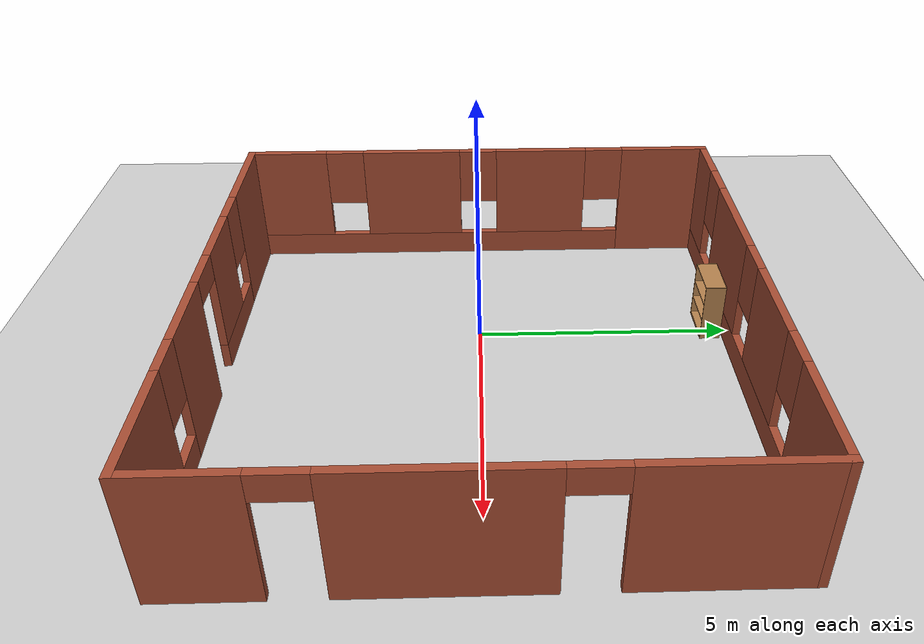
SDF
<sdf version="1.7">
 <world name="default">
  <light name="sun" type="directional">
   <pose>0 0 10 0 -0 0</pose>
   <diffuse>0.8 0.8 0.8 1</diffuse>
   <specular>0.2 0.2 0.2 1</specular>
   <attenuation>
    <range>1000</range>
    <constant>0.9</constant>
    <linear>0.01</linear>
    <quadratic>0.001</quadratic>
   </attenuation>
   <direction>-0.5 0.1 -0.9</direction>
   <spot><inner_angle>0</inner_angle><outer_angle>0</outer_angle><falloff>0</falloff></spot>
  </light>
  <model name="ground_plane">
   <static>1</static>
   <link name="link">
    <collision name="collision">
     <geometry><plane><normal>0 0 1</normal><size>100 100</size></plane></geometry>
     <surface>
      <contact><collide_bitmask>65535</collide_bitmask></contact>
      <friction><ode><mu>100</mu><mu2>50</mu2></ode></friction>
     </surface>
    </collision>
    <visual name="visual">
     <cast_shadows>0</cast_shadows>
     <geometry><plane><normal>0 0 1</normal><size>100 100</size></plane></geometry>
     <material>
      <script><uri>file://media/materials/scripts/gazebo.material</uri><name>Gazebo/Grey</name></script>
     </material>
    </visual>
   </link>
  </model>
  <gravity>0 0 -9.8</gravity>
  <magnetic_field>6e-06 2.3e-05 -4.2e-05</magnetic_field>
  <atmosphere type="adiabatic"/>
  <physics type="ode">
   <max_step_size>0.001</max_step_size>
   <real_time_factor>1</real_time_factor>
   <real_time_update_rate>1000</real_time_update_rate>
  </physics>
  <scene><ambient>0.4 0.4 0.4 1</ambient><background>0.7 0.7 0.7 1</background><shadows>1</shadows></scene>
  <audio><device>default</device></audio>
  <spherical_coordinates>
   <surface_model>EARTH_WGS84</surface_model>
   <latitude_deg>0</latitude_deg>
   <longitude_deg>0</longitude_deg>
   <elevation>0</elevation>
   <heading_deg>0</heading_deg>
  </spherical_coordinates>
  <model name="my_room">
   <pose>1.51198 0.035465 0 0 -0 0</pose>
   <link name="Wall_12">
    <pose>-4.925 0 0 0 -0 -1.5708</pose>
    <visual name="Wall_12_Visual_0">
     <pose>-4.06801 0 1.25 0 -0 0</pose>
     <geometry><box><size>1.86398 0.15 2.5</size></box></geometry>
     <material>
      <script><uri>file://media/materials/scripts/gazebo.material</uri><name>Gazebo/Bricks</name></script>
      <ambient>1 1 1 1</ambient>
     </material>
     <meta><layer>0</layer></meta>
    </visual>
    <collision name="Wall_12_Collision_0">
     <geometry><box><size>1.86398 0.15 2.5</size></box></geometry>
     <pose>-4.06801 0 1.25 0 -0 0</pose>
    </collision>
    <visual name="Wall_12_Visual_1">
     <pose>0.931989 0 0.25 0 -0 0</pose>
     <geometry><box><size>8.13602 0.15 0.5</size></box></geometry>
     <material>
      <script><uri>file://media/materials/scripts/gazebo.material</uri><name>Gazebo/Bricks</name></script>
      <ambient>1 1 1 1</ambient>
     </material>
     <meta><layer>0</layer></meta>
    </visual>
    <collision name="Wall_12_Collision_1">
     <geometry><box><size>8.13602 0.15 0.5</size></box></geometry>
     <pose>0.931989 0 0.25 0 -0 0</pose>
    </collision>
    <visual name="Wall_12_Visual_2">
     <pose>-1.35936 0 1.5 0 -0 0</pose>
     <geometry><box><size>1.95332 0.15 2</size></box></geometry>
     <material>
      <script><uri>file://media/materials/scripts/gazebo.material</uri><name>Gazebo/Bricks</name></script>
      <ambient>1 1 1 1</ambient>
     </material>
     <meta><layer>0</layer></meta>
    </visual>
    <collision name="Wall_12_Collision_2">
     <geometry><box><size>1.95332 0.15 2</size></box></geometry>
     <pose>-1.35936 0 1.5 0 -0 0</pose>
    </collision>
    <visual name="Wall_12_Visual_3">
     <pose>1.46548 0 1.5 0 -0 0</pose>
     <geometry><box><size>2.09635 0.15 2</size></box></geometry>
     <material>
      <script><uri>file://media/materials/scripts/gazebo.material</uri><name>Gazebo/Bricks</name></script>
      <ambient>1 1 1 1</ambient>
     </material>
     <meta><layer>0</layer></meta>
    </visual>
    <collision name="Wall_12_Collision_3">
     <geometry><box><size>2.09635 0.15 2</size></box></geometry>
     <pose>1.46548 0 1.5 0 -0 0</pose>
    </collision>
    <visual name="Wall_12_Visual_4">
     <pose>4.15683 0 1.5 0 -0 0</pose>
     <geometry><box><size>1.68634 0.15 2</size></box></geometry>
     <material>
      <script><uri>file://media/materials/scripts/gazebo.material</uri><name>Gazebo/Bricks</name></script>
      <ambient>1 1 1 1</ambient>
     </material>
     <meta><layer>0</layer></meta>
    </visual>
    <collision name="Wall_12_Collision_4">
     <geometry><box><size>1.68634 0.15 2</size></box></geometry>
     <pose>4.15683 0 1.5 0 -0 0</pose>
    </collision>
    <visual name="Wall_12_Visual_5">
     <pose>-2.73602 0 1.9 0 -0 0</pose>
     <geometry><box><size>0.8 0.15 1.2</size></box></geometry>
     <material>
      <script><uri>file://media/materials/scripts/gazebo.material</uri><name>Gazebo/Bricks</name></script>
      <ambient>1 1 1 1</ambient>
     </material>
     <meta><layer>0</layer></meta>
    </visual>
    <collision name="Wall_12_Collision_5">
     <geometry><box><size>0.8 0.15 1.2</size></box></geometry>
     <pose>-2.73602 0 1.9 0 -0 0</pose>
    </collision>
    <visual name="Wall_12_Visual_6">
     <pose>0.017303 0 1.9 0 -0 0</pose>
     <geometry><box><size>0.8 0.15 1.2</size></box></geometry>
     <material>
      <script><uri>file://media/materials/scripts/gazebo.material</uri><name>Gazebo/Bricks</name></script>
      <ambient>1 1 1 1</ambient>
     </material>
     <meta><layer>0</layer></meta>
    </visual>
    <collision name="Wall_12_Collision_6">
     <geometry><box><size>0.8 0.15 1.2</size></box></geometry>
     <pose>0.017303 0 1.9 0 -0 0</pose>
    </collision>
    <visual name="Wall_12_Visual_7">
     <pose>2.91366 0 1.9 0 -0 0</pose>
     <geometry><box><size>0.8 0.15 1.2</size></box></geometry>
     <material>
      <script><uri>file://media/materials/scripts/gazebo.material</uri><name>Gazebo/Bricks</name></script>
      <ambient>1 1 1 1</ambient>
     </material>
     <meta><layer>0</layer></meta>
    </visual>
    <collision name="Wall_12_Collision_7">
     <geometry><box><size>0.8 0.15 1.2</size></box></geometry>
     <pose>2.91366 0 1.9 0 -0 0</pose>
    </collision>
   </link>
   <link name="Wall_13">
    <pose>0 -4.925 0 0 -0 0</pose>
    <visual name="Wall_13_Visual_0">
     <pose>-3.9301 0 1.25 0 -0 0</pose>
     <geometry><box><size>2.1398 0.15 2.5</size></box></geometry>
     <material>
      <script><uri>file://media/materials/scripts/gazebo.material</uri><name>Gazebo/Bricks</name></script>
      <ambient>1 1 1 1</ambient>
     </material>
     <meta><layer>0</layer></meta>
    </visual>
    <collision name="Wall_13_Collision_0">
     <geometry><box><size>2.1398 0.15 2.5</size></box></geometry>
     <pose>-3.9301 0 1.25 0 -0 0</pose>
    </collision>
    <visual name="Wall_13_Visual_1">
     <pose>1.10479 0 1.25 0 -0 0</pose>
     <geometry><box><size>1.65302 0.15 2.5</size></box></geometry>
     <material>
      <script><uri>file://media/materials/scripts/gazebo.material</uri><name>Gazebo/Bricks</name></script>
      <ambient>1 1 1 1</ambient>
     </material>
     <meta><layer>0</layer></meta>
    </visual>
    <collision name="Wall_13_Collision_1">
     <geometry><box><size>1.65302 0.15 2.5</size></box></geometry>
     <pose>1.10479 0 1.25 0 -0 0</pose>
    </collision>
    <visual name="Wall_13_Visual_2">
     <pose>-1.74096 0 0.25 0 -0 0</pose>
     <geometry><box><size>2.23848 0.15 0.5</size></box></geometry>
     <material>
      <script><uri>file://media/materials/scripts/gazebo.material</uri><name>Gazebo/Bricks</name></script>
      <ambient>1 1 1 1</ambient>
     </material>
     <meta><layer>0</layer></meta>
    </visual>
    <collision name="Wall_13_Collision_2">
     <geometry><box><size>2.23848 0.15 0.5</size></box></geometry>
     <pose>-1.74096 0 0.25 0 -0 0</pose>
    </collision>
    <visual name="Wall_13_Visual_3">
     <pose>3.46565 0 0.25 0 -0 0</pose>
     <geometry><box><size>3.0687 0.15 0.5</size></box></geometry>
     <material>
      <script><uri>file://media/materials/scripts/gazebo.material</uri><name>Gazebo/Bricks</name></script>
      <ambient>1 1 1 1</ambient>
     </material>
     <meta><layer>0</layer></meta>
    </visual>
    <collision name="Wall_13_Collision_3">
     <geometry><box><size>3.0687 0.15 0.5</size></box></geometry>
     <pose>3.46565 0 0.25 0 -0 0</pose>
    </collision>
    <visual name="Wall_13_Visual_4">
     <pose>-1.34096 0 1.5 0 -0 0</pose>
     <geometry><box><size>1.43848 0.15 2</size></box></geometry>
     <material>
      <script><uri>file://media/materials/scripts/gazebo.material</uri><name>Gazebo/Bricks</name></script>
      <ambient>1 1 1 1</ambient>
     </material>
     <meta><layer>0</layer></meta>
    </visual>
    <collision name="Wall_13_Collision_4">
     <geometry><box><size>1.43848 0.15 2</size></box></geometry>
     <pose>-1.34096 0 1.5 0 -0 0</pose>
    </collision>
    <visual name="Wall_13_Visual_5">
     <pose>-1.34096 0 1.5 0 -0 0</pose>
     <geometry><box><size>1.43848 0.15 2</size></box></geometry>
     <material>
      <script><uri>file://media/materials/scripts/gazebo.material</uri><name>Gazebo/Bricks</name></script>
      <ambient>1 1 1 1</ambient>
     </material>
     <meta><layer>0</layer></meta>
    </visual>
    <collision name="Wall_13_Collision_5">
     <geometry><box><size>1.43848 0.15 2</size></box></geometry>
     <pose>-1.34096 0 1.5 0 -0 0</pose>
    </collision>
    <visual name="Wall_13_Visual_6">
     <pose>3.86565 0 1.5 0 -0 0</pose>
     <geometry><box><size>2.2687 0.15 2</size></box></geometry>
     <material>
      <script><uri>file://media/materials/scripts/gazebo.material</uri><name>Gazebo/Bricks</name></script>
      <ambient>1 1 1 1</ambient>
     </material>
     <meta><layer>0</layer></meta>
    </visual>
    <collision name="Wall_13_Collision_6">
     <geometry><box><size>2.2687 0.15 2</size></box></geometry>
     <pose>3.86565 0 1.5 0 -0 0</pose>
    </collision>
    <visual name="Wall_13_Visual_7">
     <pose>-2.4602 0 1.9 0 -0 0</pose>
     <geometry><box><size>0.8 0.15 1.2</size></box></geometry>
     <material>
      <script><uri>file://media/materials/scripts/gazebo.material</uri><name>Gazebo/Bricks</name></script>
      <ambient>1 1 1 1</ambient>
     </material>
     <meta><layer>0</layer></meta>
    </visual>
    <collision name="Wall_13_Collision_7">
     <geometry><box><size>0.8 0.15 1.2</size></box></geometry>
     <pose>-2.4602 0 1.9 0 -0 0</pose>
    </collision>
    <visual name="Wall_13_Visual_8">
     <pose>2.3313 0 1.9 0 -0 0</pose>
     <geometry><box><size>0.8 0.15 1.2</size></box></geometry>
     <material>
      <script><uri>file://media/materials/scripts/gazebo.material</uri><name>Gazebo/Bricks</name></script>
      <ambient>1 1 1 1</ambient>
     </material>
     <meta><layer>0</layer></meta>
    </visual>
    <collision name="Wall_13_Collision_8">
     <geometry><box><size>0.8 0.15 1.2</size></box></geometry>
     <pose>2.3313 0 1.9 0 -0 0</pose>
    </collision>
    <visual name="Wall_13_Visual_9">
     <pose>-0.171721 0 2.25 0 -0 0</pose>
     <geometry><box><size>0.9 0.15 0.5</size></box></geometry>
     <material>
      <script><uri>file://media/materials/scripts/gazebo.material</uri><name>Gazebo/Bricks</name></script>
      <ambient>1 1 1 1</ambient>
     </material>
     <meta><layer>0</layer></meta>
    </visual>
    <collision name="Wall_13_Collision_9">
     <geometry><box><size>0.9 0.15 0.5</size></box></geometry>
     <pose>-0.171721 0 2.25 0 -0 0</pose>
    </collision>
    <visual name="Wall_13_Visual_10">
     <pose>-0.171721 0 2.25 0 -0 0</pose>
     <geometry><box><size>0.9 0.15 0.5</size></box></geometry>
     <material>
      <script><uri>file://media/materials/scripts/gazebo.material</uri><name>Gazebo/Bricks</name></script>
      <ambient>1 1 1 1</ambient>
     </material>
     <meta><layer>0</layer></meta>
    </visual>
    <collision name="Wall_13_Collision_10">
     <geometry><box><size>0.9 0.15 0.5</size></box></geometry>
     <pose>-0.171721 0 2.25 0 -0 0</pose>
    </collision>
   </link>
   <link name="Wall_14">
    <pose>4.925 0 0 0 -0 1.5708</pose>
    <visual name="Wall_14_Visual_0">
     <pose>-4.09244 0 1.25 0 -0 0</pose>
     <geometry><box><size>1.81513 0.15 2.5</size></box></geometry>
     <material>
      <script><uri>file://media/materials/scripts/gazebo.material</uri><name>Gazebo/Bricks</name></script>
      <ambient>1 1 1 1</ambient>
     </material>
     <meta><layer>0</layer></meta>
    </visual>
    <collision name="Wall_14_Collision_0">
     <geometry><box><size>1.81513 0.15 2.5</size></box></geometry>
     <pose>-4.09244 0 1.25 0 -0 0</pose>
    </collision>
    <visual name="Wall_14_Visual_1">
     <pose>-0.607301 0 1.25 0 -0 0</pose>
     <geometry><box><size>3.35514 0.15 2.5</size></box></geometry>
     <material>
      <script><uri>file://media/materials/scripts/gazebo.material</uri><name>Gazebo/Bricks</name></script>
      <ambient>1 1 1 1</ambient>
     </material>
     <meta><layer>0</layer></meta>
    </visual>
    <collision name="Wall_14_Collision_1">
     <geometry><box><size>3.35514 0.15 2.5</size></box></geometry>
     <pose>-0.607301 0 1.25 0 -0 0</pose>
    </collision>
    <visual name="Wall_14_Visual_2">
     <pose>3.48513 0 1.25 0 -0 0</pose>
     <geometry><box><size>3.02973 0.15 2.5</size></box></geometry>
     <material>
      <script><uri>file://media/materials/scripts/gazebo.material</uri><name>Gazebo/Bricks</name></script>
      <ambient>1 1 1 1</ambient>
     </material>
     <meta><layer>0</layer></meta>
    </visual>
    <collision name="Wall_14_Collision_2">
     <geometry><box><size>3.02973 0.15 2.5</size></box></geometry>
     <pose>3.48513 0 1.25 0 -0 0</pose>
    </collision>
    <visual name="Wall_14_Visual_3">
     <pose>-2.73487 0 2.25 0 -0 0</pose>
     <geometry><box><size>0.9 0.15 0.5</size></box></geometry>
     <material>
      <script><uri>file://media/materials/scripts/gazebo.material</uri><name>Gazebo/Bricks</name></script>
      <ambient>1 1 1 1</ambient>
     </material>
     <meta><layer>0</layer></meta>
    </visual>
    <collision name="Wall_14_Collision_3">
     <geometry><box><size>0.9 0.15 0.5</size></box></geometry>
     <pose>-2.73487 0 2.25 0 -0 0</pose>
    </collision>
    <visual name="Wall_14_Visual_4">
     <pose>1.52027 0 2.25 0 -0 0</pose>
     <geometry><box><size>0.9 0.15 0.5</size></box></geometry>
     <material>
      <script><uri>file://media/materials/scripts/gazebo.material</uri><name>Gazebo/Bricks</name></script>
      <ambient>1 1 1 1</ambient>
     </material>
     <meta><layer>0</layer></meta>
    </visual>
    <collision name="Wall_14_Collision_4">
     <geometry><box><size>0.9 0.15 0.5</size></box></geometry>
     <pose>1.52027 0 2.25 0 -0 0</pose>
    </collision>
   </link>
   <link name="Wall_6">
    <pose>0 4.925 0 0 -0 3.14159</pose>
    <visual name="Wall_6_Visual_0">
     <pose>-3.90141 0 1.25 0 -0 0</pose>
     <geometry><box><size>2.19718 0.15 2.5</size></box></geometry>
     <material>
      <script><uri>file://media/materials/scripts/gazebo.material</uri><name>Gazebo/Bricks</name></script>
      <ambient>1 1 1 1</ambient>
     </material>
     <meta><layer>0</layer></meta>
    </visual>
    <collision name="Wall_6_Collision_0">
     <geometry><box><size>2.19718 0.15 2.5</size></box></geometry>
     <pose>-3.90141 0 1.25 0 -0 0</pose>
    </collision>
    <visual name="Wall_6_Visual_1">
     <pose>1.09859 0 0.25 0 -0 0</pose>
     <geometry><box><size>7.80282 0.15 0.5</size></box></geometry>
     <material>
      <script><uri>file://media/materials/scripts/gazebo.material</uri><name>Gazebo/Bricks</name></script>
      <ambient>1 1 1 1</ambient>
     </material>
     <meta><layer>0</layer></meta>
    </visual>
    <collision name="Wall_6_Collision_1">
     <geometry><box><size>7.80282 0.15 0.5</size></box></geometry>
     <pose>1.09859 0 0.25 0 -0 0</pose>
    </collision>
    <visual name="Wall_6_Visual_2">
     <pose>-1.06191 0 1.5 0 -0 0</pose>
     <geometry><box><size>1.88181 0.15 2</size></box></geometry>
     <material>
      <script><uri>file://media/materials/scripts/gazebo.material</uri><name>Gazebo/Bricks</name></script>
      <ambient>1 1 1 1</ambient>
     </material>
     <meta><layer>0</layer></meta>
    </visual>
    <collision name="Wall_6_Collision_2">
     <geometry><box><size>1.88181 0.15 2</size></box></geometry>
     <pose>-1.06191 0 1.5 0 -0 0</pose>
    </collision>
    <visual name="Wall_6_Visual_3">
     <pose>1.81656 0 1.5 0 -0 0</pose>
     <geometry><box><size>2.27514 0.15 2</size></box></geometry>
     <material>
      <script><uri>file://media/materials/scripts/gazebo.material</uri><name>Gazebo/Bricks</name></script>
      <ambient>1 1 1 1</ambient>
     </material>
     <meta><layer>0</layer></meta>
    </visual>
    <collision name="Wall_6_Collision_3">
     <geometry><box><size>2.27514 0.15 2</size></box></geometry>
     <pose>1.81656 0 1.5 0 -0 0</pose>
    </collision>
    <visual name="Wall_6_Visual_4">
     <pose>4.37707 0 1.5 0 -0 0</pose>
     <geometry><box><size>1.24587 0.15 2</size></box></geometry>
     <material>
      <script><uri>file://media/materials/scripts/gazebo.material</uri><name>Gazebo/Bricks</name></script>
      <ambient>1 1 1 1</ambient>
     </material>
     <meta><layer>0</layer></meta>
    </visual>
    <collision name="Wall_6_Collision_4">
     <geometry><box><size>1.24587 0.15 2</size></box></geometry>
     <pose>4.37707 0 1.5 0 -0 0</pose>
    </collision>
    <visual name="Wall_6_Visual_5">
     <pose>-2.40282 0 1.9 0 -0 0</pose>
     <geometry><box><size>0.8 0.15 1.2</size></box></geometry>
     <material>
      <script><uri>file://media/materials/scripts/gazebo.material</uri><name>Gazebo/Bricks</name></script>
      <ambient>1 1 1 1</ambient>
     </material>
     <meta><layer>0</layer></meta>
    </visual>
    <collision name="Wall_6_Collision_5">
     <geometry><box><size>0.8 0.15 1.2</size></box></geometry>
     <pose>-2.40282 0 1.9 0 -0 0</pose>
    </collision>
    <visual name="Wall_6_Visual_6">
     <pose>0.278993 0 1.9 0 -0 0</pose>
     <geometry><box><size>0.8 0.15 1.2</size></box></geometry>
     <material>
      <script><uri>file://media/materials/scripts/gazebo.material</uri><name>Gazebo/Bricks</name></script>
      <ambient>1 1 1 1</ambient>
     </material>
     <meta><layer>0</layer></meta>
    </visual>
    <collision name="Wall_6_Collision_6">
     <geometry><box><size>0.8 0.15 1.2</size></box></geometry>
     <pose>0.278993 0 1.9 0 -0 0</pose>
    </collision>
    <visual name="Wall_6_Visual_7">
     <pose>3.35413 0 1.9 0 -0 0</pose>
     <geometry><box><size>0.8 0.15 1.2</size></box></geometry>
     <material>
      <script><uri>file://media/materials/scripts/gazebo.material</uri><name>Gazebo/Bricks</name></script>
      <ambient>1 1 1 1</ambient>
     </material>
     <meta><layer>0</layer></meta>
    </visual>
    <collision name="Wall_6_Collision_7">
     <geometry><box><size>0.8 0.15 1.2</size></box></geometry>
     <pose>3.35413 0 1.9 0 -0 0</pose>
    </collision>
   </link>
   <static>1</static>
  </model>
  <model name="bookshelf">
   <static>1</static>
   <link name="link">
    <inertial><mass>1</mass></inertial>
    <collision name="back">
     <pose>0 0.005 0.6 0 -0 0</pose>
     <geometry><box><size>0.9 0.01 1.2</size></box></geometry>
    </collision>
    <visual name="visual1">
     <pose>0 0.005 0.6 0 -0 0</pose>
     <geometry><box><size>0.9 0.01 1.2</size></box></geometry>
     <material>
      <script><uri>file://media/materials/scripts/gazebo.material</uri><name>Gazebo/Wood</name></script>
     </material>
    </visual>
    <collision name="left_side">
     <pose>0.45 -0.195 0.6 0 -0 0</pose>
     <geometry><box><size>0.02 0.4 1.2</size></box></geometry>
    </collision>
    <visual name="visual2">
     <pose>0.45 -0.195 0.6 0 -0 0</pose>
     <geometry><box><size>0.02 0.4 1.2</size></box></geometry>
     <material>
      <script><uri>file://media/materials/scripts/gazebo.material</uri><name>Gazebo/Wood</name></script>
     </material>
    </visual>
    <collision name="right_side">
     <pose>-0.45 -0.195 0.6 0 -0 0</pose>
     <geometry><box><size>0.02 0.4 1.2</size></box></geometry>
    </collision>
    <visual name="visual3">
     <pose>-0.45 -0.195 0.6 0 -0 0</pose>
     <geometry><box><size>0.02 0.4 1.2</size></box></geometry>
     <material>
      <script><uri>file://media/materials/scripts/gazebo.material</uri><name>Gazebo/Wood</name></script>
     </material>
    </visual>
    <collision name="bottom">
     <pose>0 -0.195 0.03 0 -0 0</pose>
     <geometry><box><size>0.88 0.4 0.06</size></box></geometry>
    </collision>
    <visual name="visual4">
     <pose>0 -0.195 0.03 0 -0 0</pose>
     <geometry><box><size>0.88 0.4 0.06</size></box></geometry>
     <material>
      <script><uri>file://media/materials/scripts/gazebo.material</uri><name>Gazebo/Wood</name></script>
     </material>
    </visual>
    <collision name="top">
     <pose>0 -0.195 1.19 0 -0 0</pose>
     <geometry><box><size>0.88 0.4 0.02</size></box></geometry>
    </collision>
    <visual name="visual5">
     <pose>0 -0.195 1.19 0 -0 0</pose>
     <geometry><box><size>0.88 0.4 0.02</size></box></geometry>
     <material>
      <script><uri>file://media/materials/scripts/gazebo.material</uri><name>Gazebo/Wood</name></script>
     </material>
    </visual>
    <collision name="low_shelf">
     <pose>0 -0.195 0.43 0 -0 0</pose>
     <geometry><box><size>0.88 0.4 0.02</size></box></geometry>
    </collision>
    <visual name="visual6">
     <pose>0 -0.195 0.43 0 -0 0</pose>
     <geometry><box><size>0.88 0.4 0.02</size></box></geometry>
     <material>
      <script><uri>file://media/materials/scripts/gazebo.material</uri><name>Gazebo/Wood</name></script>
     </material>
    </visual>
    <collision name="high_shelf">
     <pose>0 -0.195 0.8 0 -0 0</pose>
     <geometry><box><size>0.88 0.4 0.02</size></box></geometry>
    </collision>
    <visual name="visual7">
     <pose>0 -0.195 0.8 0 -0 0</pose>
     <geometry><box><size>0.88 0.4 0.02</size></box></geometry>
     <material>
      <script><uri>file://media/materials/scripts/gazebo.material</uri><name>Gazebo/Wood</name></script>
     </material>
    </visual>
   </link>
   <pose>-0.198812 4.82016 0 0 -0 0</pose>
  </model>
 </world>
</sdf>
